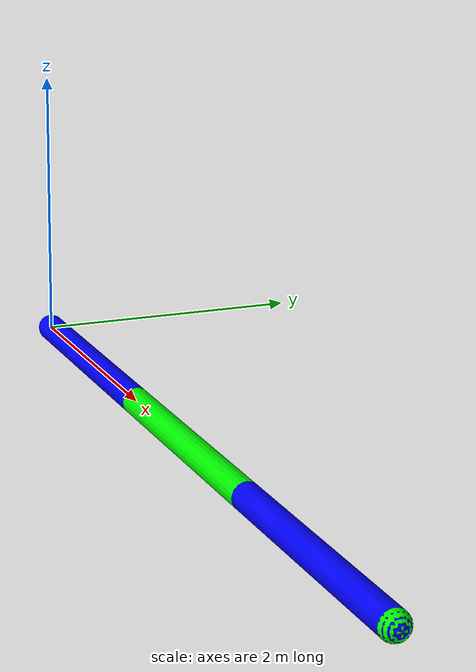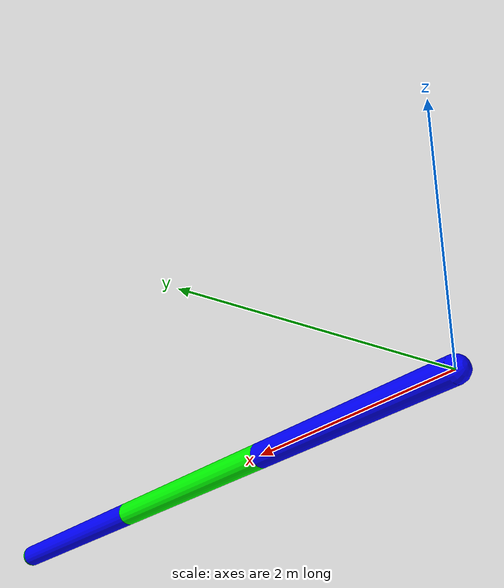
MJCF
<?xml version="1.0"?>
<mujoco>
  <compiler eulerseq="XYZ" angle="degree"/>

  <default class="main">
    <geom rgba="0 0 1 1"/> <!-- Red color -->
    <default class="sub">
      <geom rgba="0 1 0 1"/> <!-- Green color -->
    </default>

  </default>

  <worldbody>
    <!-- 2 DoF RR Robot Arm -->
    <body name="robot" pos="0 0 0">
      <geom type="capsule" density="0.1" class="main" size="0.1 1" pos="1 0 0" euler="0 90 0"/>
      <joint name="j0" type="hinge" axis="0 0 1" frictionloss="0.5"/>
      <body pos="2 0 0">
        <geom type="capsule" density="0.1" class="sub" size="0.1 1" pos="1 0 0" euler="0 90 0"/>
        <joint name="j1" type="hinge" axis="0 0 1" frictionloss="0.5"/>
        <body pos="2 0 0">
          <geom type="capsule" density="0.1" class="main" size="0.1 1" pos="1 0 0" euler="0 90 0"/>
          <joint name="j2" type="hinge" axis="0 0 1" frictionloss="0.5"/>
          <body pos="2 0 0">
            <geom type="sphere" density="0.1" class="sub" size="0.1 1"/>
            <joint name="eef" type="hinge" axis="0 0 1" frictionloss="0.5"/>
          </body>
        </body>
      </body>
    </body>

    <!-- For Tracking EEF  -->
    <body name="target" pos="6 0 0">
      <geom type="sphere" size="0.1" rgba="1 0 0 1" contype="0" conaffinity="0"/>  <!-- Red sphere -->
      <joint name="slide_x" type="slide" axis="1 0 0"/>  <!-- x-direction -->
      <joint name="slide_y" type="slide" axis="0 1 0"/>  <!-- y-direction -->
    </body>

    <camera mode="fixed" pos="0 0 14" euler="0 0 0"/>

  </worldbody>

  <actuator>
    <motor joint="j0" ctrllimited="true" ctrlrange="-1 1" />
    <motor joint="j1" ctrllimited="true" ctrlrange="-1 1" />
    <motor joint="j2" ctrllimited="true" ctrlrange="-1 1" />
  </actuator>
</mujoco>
